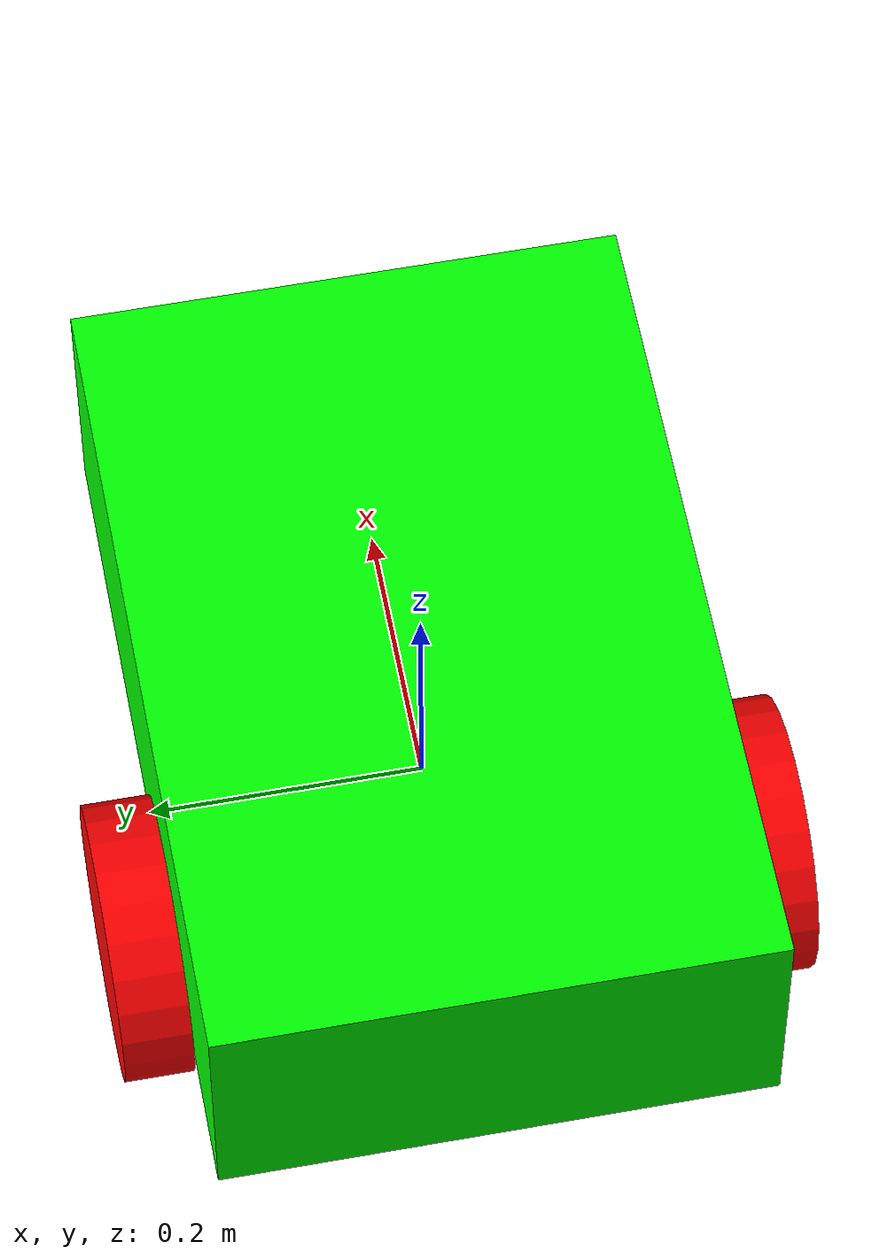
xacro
<?xml version="1.0"?>
<robot name="my_bot" xmlns:xacro="http://www.ros.org/wiki/xacro">
    <xacro:include filename="common_properties.xacro" />
    <xacro:include filename="mobile_base.xacro" />
    <xacro:include filename="mobile_base_gazebo.xacro" />
    <xacro:include filename="sensor.xacro" />

</robot>

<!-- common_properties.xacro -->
<robot  xmlns:xacro="http://www.ros.org/wiki/xacro">
        <material name="green">
            <color rgba="0 1 0 1"/>
        </material>
        <material name="gray">
            <color rgba="1 0 0 1"/>
        </material>
        <xacro:macro name="box_inertia" params="m l w h xyz rpy">
            <inertial>
                <origin xyz ="${xyz}" rpy="${rpy}" />
                <mass value="${m}" />
                <inertia ixx="${(m/12)*(h*h + l*l)}" ixy ="0"                     ixz="0"
                         iyx="0"                     iyy="${(m/12)*(w*w + l*l)}"  iyz="0"
                         izx="0"                     izy="0"                      izz="${(m/12)*(w*w + h*h)}" />

            </inertial>

        </xacro:macro>
    <xacro:macro name="cylinder_inertia" params="m r h xyz rpy">
        <inertial>
            <origin xyz="${xyz}" rpy="${rpy}" />
            <mass value="${m}" />
            <inertia ixx="${(m/12) * (3*r*r + h*h)}" ixy="0" ixz="0"
                     iyy="${(m/12) * (3*r*r + h*h)}" iyz="0"
                     izz="${(m/2) * (r*r)}" />
        </inertial>
    </xacro:macro>
    <xacro:macro name="sphere_inertia" params="m r xyz rpy">
        <inertial>
            <origin xyz="${xyz}" rpy="${rpy}" />
            <mass value="${m}" />
            <inertia ixx="${(2/5) * m * r * r}" ixy="0" ixz="0"
                     iyy="${(2/5) * m * r * r}" iyz="0"
                     izz="${(2/5) * m * r * r}" />
        </inertial>
    </xacro:macro>
</robot>

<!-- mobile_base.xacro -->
<robot  xmlns:xacro="http://www.ros.org/wiki/xacro">
        <xacro:property name="base_length" value="0.6"/>
        <xacro:property name="base_width" value="0.4"/>
        <xacro:property name="base_height" value="0.2"/>
        <xacro:property name="wheel_radius" value="0.1"/>
        <xacro:property name="wheel_length" value="0.05"/>

        <link name="base_foot"/>
    <joint name="base" type="fixed">
       <parent link="base_foot"/>
       <child link="base_link"/>
       <origin xyz="0 0 ${wheel_radius}" rpy="0 0 0"/>
    </joint>
        <link name="base_link">
            <visual>
                <geometry>
                    <box size="${base_length} ${base_width} ${base_height}"/>
                </geometry>
                <origin xyz="0 0 0" rpy="0 0 0"/>
                <material name="green"/>
            </visual>
            <collision>
                <geometry>
                    <box size="${base_length} ${base_width} ${base_height}"/>
                </geometry>
                <origin xyz="0 0 0" rpy="0 0 0"/>
            </collision>
            <xacro:box_inertia m="5.0" l="${base_length}" w="${base_width}" h="${base_height}" xyz="0 0 0" rpy="0 0 0"/>
        </link>

        <xacro:macro name="wheel_link" params ="prefix">
           <link name="${prefix}_link" >
           	<visual>
                <geometry>
                    <cylinder radius="${wheel_radius}" length="${wheel_length}"/>
                </geometry>
                <origin xyz="0 0 0" rpy="${pi/2.0} 0 0"/>
                <material name ="gray"/>
            </visual>
            <collision>
                <geometry>
                    <cylinder radius="${wheel_radius}" length="${wheel_length}"/>
                </geometry>
                <origin xyz="0 0 0" rpy="${pi/2.0} 0 0"/>
            </collision>
            <xacro:cylinder_inertia m="1.0" r="${wheel_radius}" h="${wheel_length}"
                                    xyz="0 0 0" rpy="${pi / 2.0} 0 0" />
           </link>
        </xacro:macro>

        <xacro:wheel_link prefix="right" />
        <xacro:wheel_link prefix="left"  />

    <joint name="right_joint" type="continuous">
        <parent link="base_link"/>
        <child link="right_link"/>
        <origin xyz="${(-base_length/6.0)} ${-(base_width + wheel_length)/2.0} ${-base_height/2.0}" rpy="0 0 0"/>
        <axis xyz="0 1 0"/>
    </joint>

    <joint name="left_joint" type="continuous">
       <parent link="base_link"/>
       <child link ="left_link"/>
       <origin xyz="${(-base_length/6.0)} ${(base_width + wheel_length)/2.0} ${(-base_height/2.0)}" rpy="0 0 0"/>
       <axis xyz="0 1 0"/>
    </joint>
        <link name="caster_wheel">
            <visual>
                <geometry>
                    <sphere radius="${(wheel_radius/2.0)}"/>
                </geometry>
                <origin xyz="0 0 0" rpy="0 0 0"/>
                <material name="gray"/>
            </visual>
            <collision>
                <geometry>
                    <sphere radius="${(wheel_radius/2.0)}"/>
                </geometry>
                <origin xyz="0 0 0" rpy="0 0 0"/>
            </collision>
            <xacro:sphere_inertia m="0.5" r="${wheel_radius / 2.0}"
                              xyz="0 0 0" rpy="0 0 0" />
        </link>
    <joint name="caster joint" type="fixed">
        <parent link="base_link"/>
        <child link="caster_wheel"/>
        <origin xyz="${(base_length/3.0)} 0 ${-(wheel_radius + wheel_length)}" rpy="0 0 0"/>

    </joint>

</robot>

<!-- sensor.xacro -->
<robot  xmlns:xacro="http://www.ros.org/wiki/xacro">
    <link name="camera_link">
        <visual>
            <geometry>
                <box size = "0.01 0.1 0.05"/>

            </geometry>
            <material name="gray"/>

        </visual>
        <collision>
             <geometry>
                <box size = "0.01 0.1 0.05"/>
            </geometry>
        </collision>
        <xacro:box_inertia m="0.1" l="0.01" w="0.1" h="0.05" xyz="0 0 0" rpy="0 0 0" />

    </link>
    <joint name="base_camera_joint" type="fixed">
        <parent link="base_link"/>
        <child link="camera_link"/>
        <origin xyz="0.305 0 -0.05" rpy="0 0 0" />
    </joint>
    <link name="camera_link_optical">

    </link>
    <joint name="camera_optical_joint" type="fixed">
        <origin xyz="0 0 0" rpy="${-pi/2} 0 ${-pi/2}" />
        <parent link="camera_link"/>
        <child link="camera_link_optical"/>
    </joint>
    <gazebo reference="camera_link">
        <material>Gazebo/Red</material>
        <sensor name="camera_sensor" type="camera">
            <pose>0 0 0 0 0 0</pose>
            <visualize>true</visualize>
            <update_rate>10.0</update_rate>
            <plugin name="camera_controller" filename="libgazebo_ros_camera.so">
                <frame_name>camera_link</frame_name>
            </plugin>
        </sensor>

    </gazebo>

</robot>
